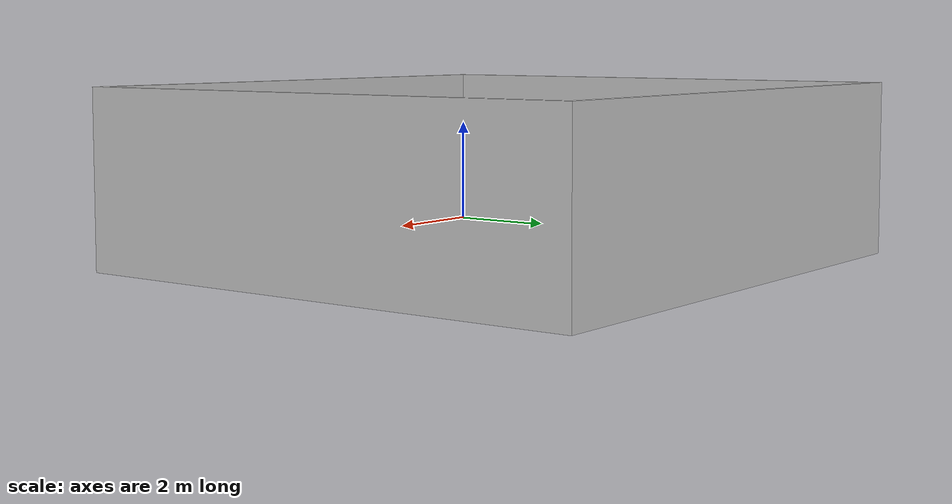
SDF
<?xml version='1.0' encoding='utf-8'?>
<sdf version="1.6">
  <model name="shopee_map">
    <static>true</static>
    <link name="shopee_link">
      <pose>0 0 0 1.5708 0 0</pose>
      <visual name="shopee_visual">
        <geometry>
          <mesh>
            <uri>/home/wonho/tech_research/vicPinky_cpp/src/vic_pinky/vicpinky_gazebo/models/shopee_map/meshes/shopee.obj</uri>
          </mesh>
        </geometry>
        <material>
          <ambient>1 1 1 1</ambient>
          <diffuse>0.8 0.8 0.8 1</diffuse>
        </material>
      </visual>
      <collision name="shopee_collision">
        <geometry>
          <mesh>
            <uri>/home/wonho/tech_research/vicPinky_cpp/src/vic_pinky/vicpinky_gazebo/models/shopee_map/meshes/shopee.obj</uri>
          </mesh>
        </geometry>
      </collision>
    </link>
  </model>
</sdf>
